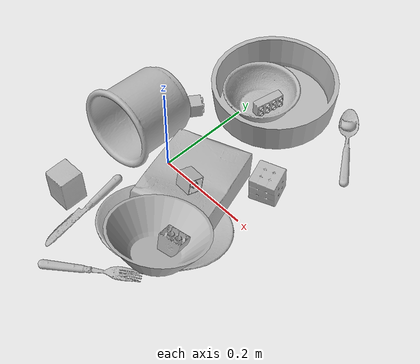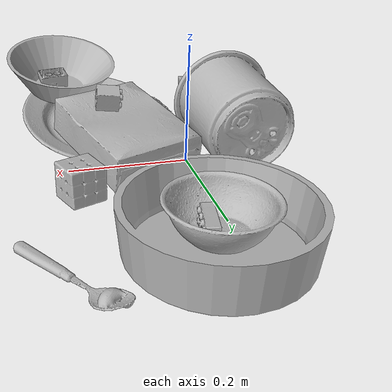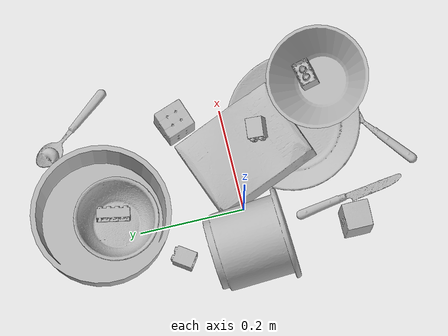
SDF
<sdf version="1.4">
  <world name="default">
    <light name="light1" type="point">
      <pose>0 0 1 0 0 0</pose>
      <diffuse>3 3 3 1</diffuse>
      <specular>3 3 3 1</specular>
    </light>
    <light name="light2" type="point">
      <pose>0 0.5 2 0 0 0</pose>
      <diffuse>1 1 1 1</diffuse>
      <specular>1 1 1 1</specular>
    </light>
    <light name="light3" type="point">
      <pose>0 0.5 2 0 0 0</pose>
      <diffuse>3 3 3 1</diffuse>
      <specular>3 3 3 1</specular>
    </light>
    <scene>
      <ambient>0.7 0.7 0.7</ambient>
    </scene>
    <model name="plate1">
      <link name="link_plate1">
        <collision name="default">
          <geometry>
            <mesh>
              <uri>model://plate/collision_meshes/collision.obj</uri>
              <scale>1.0 1.0 1.0</scale>
            </mesh>
          </geometry>
          <surface>
            <friction>
              <ode>
                <mu>0.5</mu>
                <mu2>0.5</mu2>
              </ode>
            </friction>
          <contact>
        <ode>
            <max_vel>0</max_vel>
            <min_depth>0.0001</min_depth>
            <kp>1e8</kp>
        </ode>
    </contact></surface>
        </collision>
        <visual name="default">
          <geometry>
            <mesh>
              <uri>model://plate/visual_meshes/visual.dae</uri>
              <scale>1.0 1.0 1.0</scale>
            </mesh>
          </geometry>
        </visual>
        <inertial>
          <mass>0.14927330613136292</mass>
          <pose>-0.0006044599576853216 0.00027825793949887156 -0.0010561984963715076 0.0022187657602494516 -0.0032254905015569333 0.45261542380491104</pose>
          <inertia>
            <ixx>0.0006983033</ixx>
            <iyy>0.0006916243</iyy>
            <izz>0.0013657772</izz>
            <ixy>0</ixy>
            <ixz>0</ixz>
            <iyz>0</iyz>
          </inertia>
        </inertial>
      </link>
      <pose>0.13605493307113647 -0.13063545525074005 0.036763451993465424 0.1148278238011601 0.284128111247013 2.3262389034512374</pose>
    </model>
    <model name="plate2">
      <link name="link_plate2">
        <collision name="default">
          <geometry>
            <mesh>
              <uri>model://pan_tefal/collision_meshes/collision.obj</uri>
              <scale>1.0 1.0 1.0</scale>
            </mesh>
          </geometry>
          <surface>
            <friction>
              <ode>
                <mu>0.5</mu>
                <mu2>0.5</mu2>
              </ode>
            </friction>
          <contact>
        <ode>
            <max_vel>0</max_vel>
            <min_depth>0.0001</min_depth>
            <kp>1e8</kp>
        </ode>
    </contact></surface>
        </collision>
        <visual name="default">
          <geometry>
            <mesh>
              <uri>model://pan_tefal/visual_meshes/visual.dae</uri>
              <scale>1.0 1.0 1.0</scale>
            </mesh>
          </geometry>
        </visual>
        <inertial>
          <mass>1.1722657680511475</mass>
          <pose>-0.00018002268916461617 3.2786720112198964e-05 -0.008514933288097382 0.0008190189984333748 -0.0003301390782503885 -0.3318520141268409</pose>
          <inertia>
            <ixx>0.008092094</ixx>
            <iyy>0.008144264</iyy>
            <izz>0.014895983</izz>
            <ixy>0</ixy>
            <ixz>0</ixz>
            <iyz>0</iyz>
          </inertia>
        </inertial>
      </link>
      <pose>0.03830184414982796 0.2661244571208954 0.038049980998039246 -1.731935756228327e-08 -5.9580364886373053e-08 0.11507977680229843</pose>
    </model>
    <model name="bowl1">
      <link name="link_bowl1">
        <collision name="default">
          <geometry>
            <mesh>
              <uri>model://bowl_a/collision_meshes/collision.obj</uri>
              <scale>1.0 1.0 1.0</scale>
            </mesh>
          </geometry>
          <surface>
            <friction>
              <ode>
                <mu>0.5</mu>
                <mu2>0.5</mu2>
              </ode>
            </friction>
          <contact>
        <ode>
            <max_vel>0</max_vel>
            <min_depth>0.0001</min_depth>
            <kp>1e8</kp>
        </ode>
    </contact></surface>
        </collision>
        <visual name="default">
          <geometry>
            <mesh>
              <uri>model://bowl_a/visual_meshes/visual.dae</uri>
              <scale>1.0 1.0 1.0</scale>
            </mesh>
          </geometry>
        </visual>
        <inertial>
          <mass>0.2988097667694092</mass>
          <pose>0.0002786743571050465 4.731365334009752e-05 -0.0013765293406322598 -0.0009805349169279892 -0.001093820822183951 -0.19123530183129564</pose>
          <inertia>
            <ixx>0.00085072505</ixx>
            <iyy>0.00085594796</iyy>
            <izz>0.0015130473</izz>
            <ixy>0</ixy>
            <ixz>0</ixz>
            <iyz>0</iyz>
          </inertia>
        </inertial>
      </link>
      <pose>0.18911005556583405 -0.19166329503059387 0.10789705067873001 -0.0942426653438236 -0.2377441686355734 -0.8504496871586339</pose>
    </model>
    <model name="bowl2">
      <link name="link_bowl2">
        <collision name="default">
          <geometry>
            <mesh>
              <uri>model://bowl/collision_meshes/collision.obj</uri>
              <scale>1.0 1.0 1.0</scale>
            </mesh>
          </geometry>
          <surface>
            <friction>
              <ode>
                <mu>0.5</mu>
                <mu2>0.5</mu2>
              </ode>
            </friction>
          <contact>
        <ode>
            <max_vel>0</max_vel>
            <min_depth>0.0001</min_depth>
            <kp>1e8</kp>
        </ode>
    </contact></surface>
        </collision>
        <visual name="default">
          <geometry>
            <mesh>
              <uri>model://bowl/visual_meshes/visual.dae</uri>
              <scale>1.0 1.0 1.0</scale>
            </mesh>
          </geometry>
        </visual>
        <inertial>
          <mass>0.05087859928607941</mass>
          <pose>0.00020445352129172534 -0.001030206447467208 -0.0008042655535973608 -0.015764084400621287 0.014546790156403148 0.7140405806030785</pose>
          <inertia>
            <ixx>0.0001168722</ixx>
            <iyy>0.00011426082</iyy>
            <izz>0.0001966192</izz>
            <ixy>0</ixy>
            <ixz>0</ixz>
            <iyz>0</iyz>
          </inertia>
        </inertial>
      </link>
      <pose>0.025939462706446648 0.2398715317249298 0.035489436239004135 -0.00027021922234405754 -0.002921791418745475 1.5420632763846762</pose>
    </model>
    <model name="silverware1">
      <link name="link_silverware1">
        <collision name="default">
          <geometry>
            <mesh>
              <uri>model://spoon/collision_meshes/collision.obj</uri>
              <scale>1.0 1.0 1.0</scale>
            </mesh>
          </geometry>
          <surface>
            <friction>
              <ode>
                <mu>0.5</mu>
                <mu2>0.5</mu2>
              </ode>
            </friction>
          <contact>
        <ode>
            <max_vel>0</max_vel>
            <min_depth>0.0001</min_depth>
            <kp>1e8</kp>
        </ode>
    </contact></surface>
        </collision>
        <visual name="default">
          <geometry>
            <mesh>
              <uri>model://spoon/visual_meshes/visual.dae</uri>
              <scale>1.0 1.0 1.0</scale>
            </mesh>
          </geometry>
        </visual>
        <inertial>
          <mass>0.031133336946368217</mass>
          <pose>-0.005526311229914427 -0.001603417214937508 -0.000727165665011853 0.03521724372111935 -0.03906583963771688 0.006150613707428126</pose>
          <inertia>
            <ixx>1.7316867e-06</ixx>
            <iyy>0.00011846133</iyy>
            <izz>0.00011931534</izz>
            <ixy>0</ixy>
            <ixz>0</ixz>
            <iyz>0</iyz>
          </inertia>
        </inertial>
      </link>
      <pose>0.22684094309806824 0.28283265233039856 0.008385262452065945 0.00673163833189246 0.02689298902777277 2.2304784837411</pose>
    </model>
    <model name="box1">
      <link name="link_box1">
        <collision name="default">
          <geometry>
            <mesh>
              <uri>model://cracker_box/collision_meshes/collision.obj</uri>
              <scale>1.0 1.0 1.0</scale>
            </mesh>
          </geometry>
          <surface>
            <friction>
              <ode>
                <mu>0.5</mu>
                <mu2>0.5</mu2>
              </ode>
            </friction>
          <contact>
        <ode>
            <max_vel>0</max_vel>
            <min_depth>0.0001</min_depth>
            <kp>1e8</kp>
        </ode>
    </contact></surface>
        </collision>
        <visual name="default">
          <geometry>
            <mesh>
              <uri>model://cracker_box/visual_meshes/visual.dae</uri>
              <scale>1.0 1.0 1.0</scale>
            </mesh>
          </geometry>
        </visual>
        <inertial>
          <mass>2.900710344314575</mass>
          <pose>0.0009464158210903406 0.00025434247800149024 -0.0017029534792527556 -0.0003162075379034469 -0.011106488669169442 0.0025467947685016775</pose>
          <inertia>
            <ixx>0.007378111</ixx>
            <iyy>0.012182713</iyy>
            <izz>0.01738585</izz>
            <ixy>0</ixy>
            <ixz>0</ixz>
            <iyz>0</iyz>
          </inertia>
        </inertial>
      </link>
      <pose>0.09991994500160217 -0.026493392884731293 0.05172540619969368 0.005446546613455932 0.1820003912076129 1.936020115462736</pose>
    </model>
    <model name="box2">
      <link name="link_box2">
        <collision name="default">
          <geometry>
            <mesh>
              <uri>model://rubiks_cube/collision_meshes/collision.obj</uri>
              <scale>1.0 1.0 1.0</scale>
            </mesh>
          </geometry>
          <surface>
            <friction>
              <ode>
                <mu>0.5</mu>
                <mu2>0.5</mu2>
              </ode>
            </friction>
          <contact>
        <ode>
            <max_vel>0</max_vel>
            <min_depth>0.0001</min_depth>
            <kp>1e8</kp>
        </ode>
    </contact></surface>
        </collision>
        <visual name="default">
          <geometry>
            <mesh>
              <uri>model://rubiks_cube/visual_meshes/visual.dae</uri>
              <scale>1.0 1.0 1.0</scale>
            </mesh>
          </geometry>
        </visual>
        <inertial>
          <mass>0.28670012950897217</mass>
          <pose>2.6721039830590598e-05 5.2569666877388954e-05 -7.264316082000732e-06 -0.05467310906580907 -0.09814045067101686 -0.03445712671449578</pose>
          <inertia>
            <ixx>0.00015842107</ixx>
            <iyy>0.0001576823</iyy>
            <izz>0.00015973386</izz>
            <ixy>0</ixy>
            <ixz>0</ixz>
            <iyz>0</iyz>
          </inertia>
        </inertial>
      </link>
      <pose>0.19046446681022644 0.0903204157948494 0.029279330745339394 -1.3166786143479094 -1.534022756549926 -1.4615037911392958</pose>
    </model>
    <model name="cup1">
      <link name="link_cup1">
        <collision name="default">
          <geometry>
            <mesh>
              <uri>model://g_cups/collision_meshes/collision.obj</uri>
              <scale>2.0 2.0 2.0</scale>
            </mesh>
          </geometry>
          <surface>
            <friction>
              <ode>
                <mu>0.5</mu>
                <mu2>0.5</mu2>
              </ode>
            </friction>
          <contact>
        <ode>
            <max_vel>0</max_vel>
            <min_depth>0.0001</min_depth>
            <kp>1e8</kp>
        </ode>
    </contact></surface>
        </collision>
        <visual name="default">
          <geometry>
            <mesh>
              <uri>model://g_cups/visual_meshes/visual.dae</uri>
              <scale>2.0 2.0 2.0</scale>
            </mesh>
          </geometry>
        </visual>
        <inertial>
          <mass>0.7979594469070435</mass>
          <pose>-0.001589252962730825 -8.413367322646081e-05 -0.004265873227268457 -0.2138242542550812 -0.3141046905663657 0.3112069095441374</pose>
          <inertia>
            <ixx>0.0037255902</ixx>
            <iyy>0.003712916</iyy>
            <izz>0.0038590694</izz>
            <ixy>0</ixy>
            <ixz>0</ixz>
            <iyz>0</iyz>
          </inertia>
        </inertial>
      </link>
      <pose>-0.08343318849802017 0.007497257553040981 0.07992225885391235 1.4101287732552152 0.8524524113226293 -0.07266162662322466</pose>
    </model>
    <model name="silverware2">
      <link name="link_silverware2">
        <collision name="default">
          <geometry>
            <mesh>
              <uri>model://fork/collision_meshes/collision.obj</uri>
              <scale>1.0 1.0 1.0</scale>
            </mesh>
          </geometry>
          <surface>
            <friction>
              <ode>
                <mu>0.5</mu>
                <mu2>0.5</mu2>
              </ode>
            </friction>
          <contact>
        <ode>
            <max_vel>0</max_vel>
            <min_depth>0.0001</min_depth>
            <kp>1e8</kp>
        </ode>
    </contact></surface>
        </collision>
        <visual name="default">
          <geometry>
            <mesh>
              <uri>model://fork/visual_meshes/visual.dae</uri>
              <scale>1.0 1.0 1.0</scale>
            </mesh>
          </geometry>
        </visual>
        <inertial>
          <mass>0.026295984163880348</mass>
          <pose>-0.02957003563642502 0.0004658822435885668 0.0003218861238565296 -0.013551585765180826 -0.010977835012843383 0.014453895551669751</pose>
          <inertia>
            <ixx>9.2182285e-07</ixx>
            <iyy>6.865125e-05</iyy>
            <izz>6.9063564e-05</izz>
            <ixy>0</ixy>
            <ixz>0</ixz>
            <iyz>0</iyz>
          </inertia>
        </inertial>
      </link>
      <pose>0.09261006861925125 -0.27977707982063293 0.007446609437465668 -3.0635064883532404 0.002835787095477098 0.6736599589433003</pose>
    </model>
    <model name="silverware3">
      <link name="link_silverware3">
        <collision name="default">
          <geometry>
            <mesh>
              <uri>model://knife/collision_meshes/collision.obj</uri>
              <scale>1.0 1.0 1.0</scale>
            </mesh>
          </geometry>
          <surface>
            <friction>
              <ode>
                <mu>0.5</mu>
                <mu2>0.5</mu2>
              </ode>
            </friction>
          <contact>
        <ode>
            <max_vel>0</max_vel>
            <min_depth>0.0001</min_depth>
            <kp>1e8</kp>
        </ode>
    </contact></surface>
        </collision>
        <visual name="default">
          <geometry>
            <mesh>
              <uri>model://knife/visual_meshes/visual.dae</uri>
              <scale>1.0 1.0 1.0</scale>
            </mesh>
          </geometry>
        </visual>
        <inertial>
          <mass>0.018686598166823387</mass>
          <pose>-0.023785265162587166 0.001527512213215232 5.06201722600963e-05 0.0730586728597059 0.01724841756758314 -0.007409823953988089</pose>
          <inertia>
            <ixx>5.3040145e-07</ixx>
            <iyy>7.1790884e-05</iyy>
            <izz>7.1961695e-05</izz>
            <ixy>0</ixy>
            <ixz>0</ixz>
            <iyz>0</iyz>
          </inertia>
        </inertial>
      </link>
      <pose>-0.02294103428721428 -0.20097225904464722 0.007946571335196495 -0.023844705620047542 -0.014543244957827795 -1.43140167319805</pose>
    </model>
    <model name="toy1">
      <link name="link_toy1">
        <collision name="default">
          <geometry>
            <mesh>
              <uri>model://d_lego_duplo/collision_meshes/collision.obj</uri>
              <scale>1.0 1.0 1.0</scale>
            </mesh>
          </geometry>
          <surface>
            <friction>
              <ode>
                <mu>0.5</mu>
                <mu2>0.5</mu2>
              </ode>
            </friction>
          <contact>
        <ode>
            <max_vel>0</max_vel>
            <min_depth>0.0001</min_depth>
            <kp>1e8</kp>
        </ode>
    </contact></surface>
        </collision>
        <visual name="default">
          <geometry>
            <mesh>
              <uri>model://d_lego_duplo/visual_meshes/visual.dae</uri>
              <scale>1.0 1.0 1.0</scale>
            </mesh>
          </geometry>
        </visual>
        <inertial>
          <mass>0.057973701506853104</mass>
          <pose>0.002830564510077238 0.0001636612432776019 0.000858980929479003 0.08010949801199577 -0.38355255965562274 0.0010296774355632512</pose>
          <inertia>
            <ixx>1.1222855e-05</ixx>
            <iyy>1.5928275e-05</iyy>
            <izz>1.5360585e-05</izz>
            <ixy>0</ixy>
            <ixz>0</ixz>
            <iyz>0</iyz>
          </inertia>
        </inertial>
      </link>
      <pose>0.20600910484790802 -0.1686083823442459 0.09905161708593369 -2.9141774688013635 -0.00410761951623927 -2.9560145089656604</pose>
    </model>
    <model name="toy2">
      <link name="link_toy2">
        <collision name="default">
          <geometry>
            <mesh>
              <uri>model://c_lego_duplo/collision_meshes/collision.obj</uri>
              <scale>1.0 1.0 1.0</scale>
            </mesh>
          </geometry>
          <surface>
            <friction>
              <ode>
                <mu>0.5</mu>
                <mu2>0.5</mu2>
              </ode>
            </friction>
          <contact>
        <ode>
            <max_vel>0</max_vel>
            <min_depth>0.0001</min_depth>
            <kp>1e8</kp>
        </ode>
    </contact></surface>
        </collision>
        <visual name="default">
          <geometry>
            <mesh>
              <uri>model://c_lego_duplo/visual_meshes/visual.dae</uri>
              <scale>1.0 1.0 1.0</scale>
            </mesh>
          </geometry>
        </visual>
        <inertial>
          <mass>0.03295557200908661</mass>
          <pose>0.00031645927811041474 0.0001946454867720604 0.0010453149443492293 -0.011520797378012098 0.005900082234647494 0.03110035414112205</pose>
          <inertia>
            <ixx>1.2681916e-05</ixx>
            <iyy>4.0510618e-06</iyy>
            <izz>1.4820123e-05</izz>
            <ixy>0</ixy>
            <ixz>0</ixz>
            <iyz>0</iyz>
          </inertia>
        </inertial>
      </link>
      <pose>0.04418519139289856 0.24288979172706604 0.027331341058015823 -2.6216368648787363 1.5382261312672498 -2.811819011282487</pose>
    </model>
    <model name="toy3">
      <link name="link_toy3">
        <collision name="default">
          <geometry>
            <mesh>
              <uri>model://foam_brick/collision_meshes/collision.obj</uri>
              <scale>1.0 1.0 1.0</scale>
            </mesh>
          </geometry>
          <surface>
            <friction>
              <ode>
                <mu>0.5</mu>
                <mu2>0.5</mu2>
              </ode>
            </friction>
          <contact>
        <ode>
            <max_vel>0</max_vel>
            <min_depth>0.0001</min_depth>
            <kp>1e8</kp>
        </ode>
    </contact></surface>
        </collision>
        <visual name="default">
          <geometry>
            <mesh>
              <uri>model://foam_brick/visual_meshes/visual.dae</uri>
              <scale>1.0 1.0 1.0</scale>
            </mesh>
          </geometry>
        </visual>
        <inertial>
          <mass>0.2026180773973465</mass>
          <pose>-0.00025224717683158815 0.0003458433202467859 -0.0002532101352699101 -0.2940154265809752 0.017274439844268085 -0.0007449877964386924</pose>
          <inertia>
            <ixx>8.850737e-05</ixx>
            <iyy>0.00014130655</iyy>
            <izz>0.00014310238</izz>
            <ixy>0</ixy>
            <ixz>0</ixz>
            <iyz>0</iyz>
          </inertia>
        </inertial>
      </link>
      <pose>-0.07416976988315582 -0.1987600177526474 0.03868831694126129 0.6299743476891475 -1.5355768513397758 -2.196586470310517</pose>
    </model>
    <model name="toy4">
      <link name="link_toy4">
        <collision name="default">
          <geometry>
            <mesh>
              <uri>model://f_lego_duplo/collision_meshes/collision.obj</uri>
              <scale>1.0 1.0 1.0</scale>
            </mesh>
          </geometry>
          <surface>
            <friction>
              <ode>
                <mu>0.5</mu>
                <mu2>0.5</mu2>
              </ode>
            </friction>
          <contact>
        <ode>
            <max_vel>0</max_vel>
            <min_depth>0.0001</min_depth>
            <kp>1e8</kp>
        </ode>
    </contact></surface>
        </collision>
        <visual name="default">
          <geometry>
            <mesh>
              <uri>model://f_lego_duplo/visual_meshes/visual.dae</uri>
              <scale>1.0 1.0 1.0</scale>
            </mesh>
          </geometry>
        </visual>
        <inertial>
          <mass>0.026114314794540405</mass>
          <pose>2.3694528863416053e-05 0.00013393153494689614 0.001883787801489234 0.02983849389432246 -0.014425286210530337 -0.675657453158783</pose>
          <inertia>
            <ixx>5.5180976e-06</ixx>
            <iyy>5.5672576e-06</iyy>
            <izz>4.7899434e-06</izz>
            <ixy>0</ixy>
            <ixz>0</ixz>
            <iyz>0</iyz>
          </inertia>
        </inertial>
      </link>
      <pose>-0.06798684597015381 0.1322396844625473 0.01636384427547455 0.6541070822427202 -1.5707390358781155 -2.8312472558634876</pose>
    </model>
    <model name="toy5">
      <link name="link_toy5">
        <collision name="default">
          <geometry>
            <mesh>
              <uri>model://b_lego_duplo/collision_meshes/collision.obj</uri>
              <scale>1.0 1.0 1.0</scale>
            </mesh>
          </geometry>
          <surface>
            <friction>
              <ode>
                <mu>0.5</mu>
                <mu2>0.5</mu2>
              </ode>
            </friction>
          <contact>
        <ode>
            <max_vel>0</max_vel>
            <min_depth>0.0001</min_depth>
            <kp>1e8</kp>
        </ode>
    </contact></surface>
        </collision>
        <visual name="default">
          <geometry>
            <mesh>
              <uri>model://b_lego_duplo/visual_meshes/visual.dae</uri>
              <scale>1.0 1.0 1.0</scale>
            </mesh>
          </geometry>
        </visual>
        <inertial>
          <mass>0.0471348837018013</mass>
          <pose>-0.00011053068010369316 -9.152583515970036e-06 0.0019294292433187366 -0.037494549971735465 -0.026354388193955382 0.45188781154390406</pose>
          <inertia>
            <ixx>9.646508e-06</ixx>
            <iyy>9.711356e-06</iyy>
            <izz>8.594722e-06</izz>
            <ixy>0</ixy>
            <ixz>0</ixz>
            <iyz>0</iyz>
          </inertia>
        </inertial>
      </link>
      <pose>0.12180152535438538 -0.0528692752122879 0.10391024500131607 1.6838383093262412 -0.272492710541024 -1.6895047252557658</pose>
    </model>
  <physics type="ode">
      <max_contacts>50</max_contacts>
      <ode>
        <solver>
          <type>quick</type>
          <iters>75</iters>
        </solver>
        <constraints>
          <contact_max_correcting_vel>0</contact_max_correcting_vel>
          <contact_surface_layer>0</contact_surface_layer>
        </constraints>
      </ode>
    </physics></world>
</sdf>
